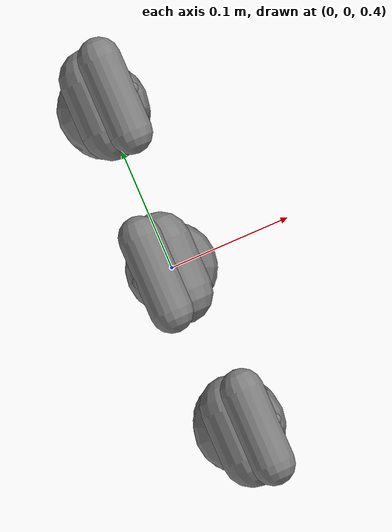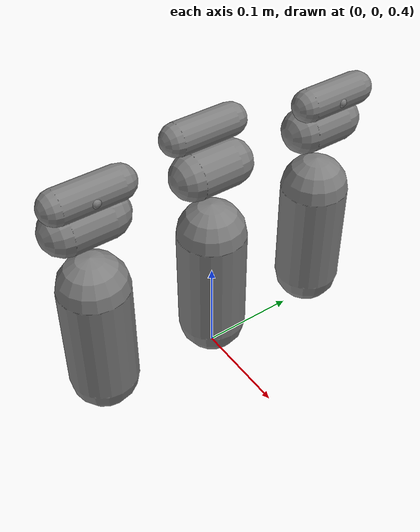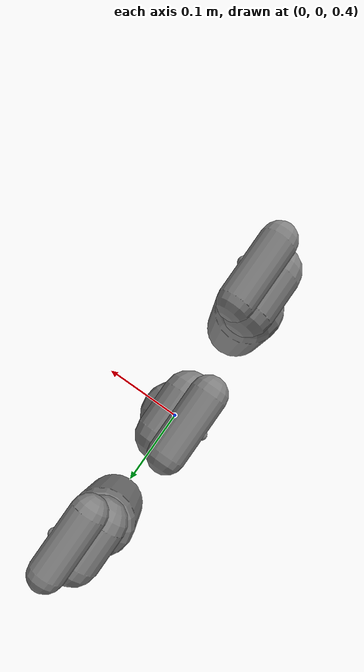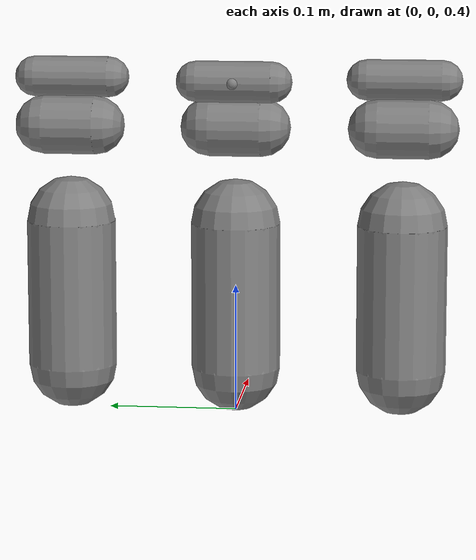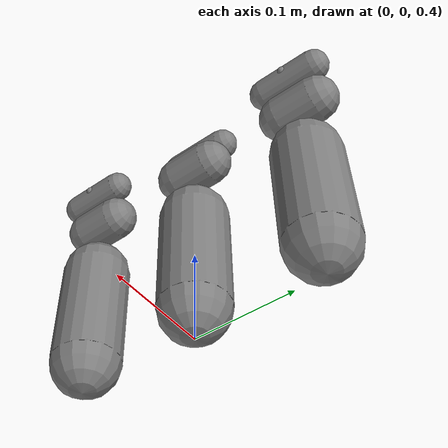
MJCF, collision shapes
<?xml version="1.0" ?>
<mujoco model="head_camera_triple">
  <compiler angle="radian" meshdir="meshes" autolimits="true"/>
  <default>
    <default class="head_camera_triple">
      <default class="visual">
        <geom group="2" type="mesh" contype="0" conaffinity="0" material="silver"/>
      </default>
      <default class="collision">
        <geom group="3" contype="1" conaffinity="1"/>
      </default>
    </default>
  </default>
  <asset>
    <material name="silver" rgba="0.75 0.75 0.75 1"/>
    <material name="blue" rgba="0 0 0.8 1"/>
    <material name="black" rgba="0 0 0 1"/>
    <material name="purple" rgba="0.8 0 0.8 1"/>
    <material name="white" rgba="1 1 1 1"/>
    <material name="light_grey" rgba="0.19 0.2 0.22 1" specular="0.75" shininess="0.05"/>
    <material name="dark_grey" rgba="0.11 0.115 0.125 1" specular="0.35" shininess="0.05"/>
    <material name="d436" rgba="0.58 0.6 0.62 1" specular="0.75" shininess="0.2"/>
    <mesh name="base_left" file="links/base_left.obj" scale="0.001 0.001 0.001"/>
    <mesh name="yaw_left" file="links/yaw_left.obj" scale="0.001 0.001 0.001"/>
    <mesh name="pitch_left_bracket" file="links/pitch_left_bracket.obj" scale="0.001 0.001 0.001"/>
    <mesh name="pitch_left_d436" file="links/pitch_left_d436.obj" scale="0.001 0.001 0.001"/>
  </asset>
  <worldbody>
    <body name="base" childclass="head_camera_triple">
      <inertial mass="1e-09" pos="0 0 0" diaginertia="1.66667e-16 1.66667e-16 1.66667e-16" quat="1 0 0 0"/>
      <body name="base_left" pos="0 0.13 0.52" quat="4.32978e-17 0.707107 -0.707107 -4.32978e-17">
        <inertial mass="0.24605608981500002" pos="0.00121642 -4.60884e-06 0.0172367" diaginertia="7.303e-05 0.0002647 0.000268578" quat="0.670606 -0.00147388 0.74181 0.0016974"/>
        <geom name="base_left_visual" type="mesh" mesh="base_left" pos="0.065 0 0.52" quat="4.32978e-17 0.707107 0.707107 4.32978e-17" class="visual" material="dark_grey"/>
        <geom name="base_left_collision" type="capsule" size="0.035 0.05750000000000002" pos="0 0 0.0275" quat="3.7494e-33 6.12323e-17 1 6.12323e-17" class="collision" contype="1" conaffinity="1" group="3"/>
        <body name="yaw_left_link" pos="0 0 0">
          <inertial mass="0.233076471852" pos="0.00139063 -1.58592e-06 -0.0992899" diaginertia="6.39461e-05 0.00012451 0.000136" quat="-0.4968 0.496906 0.503551 0.502704"/>
          <joint name="yaw_left" type="hinge" pos="0 0 0" axis="0 0 1" range="-4.7124 4.7124" damping="0.5"/>
          <geom name="yaw_left_link_visual" type="mesh" mesh="yaw_left" pos="0.065 0 0.52" quat="4.32978e-17 0.707107 0.707107 4.32978e-17" class="visual" material="dark_grey"/>
          <geom name="yaw_left_link_collision" type="capsule" size="0.023 0.020000000000000004" pos="0 0 -0.1054" quat="0.707107 -0 0.707107 0" class="collision" contype="1" conaffinity="1" group="3"/>
          <body name="pitch_left_link" pos="0 0 -0.105442" quat="0.707107 0 -0.707107 0">
            <inertial mass="0.10000002469800001" pos="-0.030783 -0.00783549 -0.00254843" diaginertia="2.97218e-05 7.28348e-05 8.77204e-05" quat="0.385609 0.569367 -0.444549 0.574023"/>
            <joint name="pitch_left" type="hinge" pos="0 0 0" axis="0 0 1" range="-1.5708 1.5708" damping="0.5"/>
            <geom name="pitch_left_link_visual0" type="mesh" mesh="pitch_left_bracket" pos="0.625442 0 -0.065" quat="0.5 -0.5 -0.5 0.5" class="visual" material="dark_grey"/>
            <geom name="pitch_left_link_visual1" type="mesh" mesh="pitch_left_d436" pos="0.625442 0 -0.065" quat="0.5 -0.5 -0.5 0.5" class="visual" material="d436"/>
            <geom name="pitch_left_link_collision" type="capsule" size="0.016 0.029" pos="-0.036558 -0.012 0" quat="3.7494e-33 6.12323e-17 1 6.12323e-17" class="collision" contype="1" conaffinity="1" group="3"/>
            <site name="left_cam_front_center" pos="-0.036558 -0.025 0" quat="0.5 0.5 0.5 -0.5"/>
            <site name="left_rgb" pos="-0.0364349 -0.0206549 0.0322991" quat="0.5 0.5 0.5 -0.5"/>
          </body>
        </body>
      </body>
      <body name="base_center" pos="0 0 0.52" quat="4.32978e-17 0.707107 0.707107 4.32978e-17">
        <inertial mass="0.24605608981500002" pos="0.00121642 -4.60884e-06 0.0172367" diaginertia="7.303e-05 0.0002647 0.000268578" quat="0.670606 -0.00147388 0.74181 0.0016974"/>
        <geom name="base_center_visual" type="mesh" mesh="base_left" pos="0.065 0 0.52" quat="4.32978e-17 0.707107 0.707107 4.32978e-17" class="visual" material="dark_grey"/>
        <geom name="base_center_collision" type="capsule" size="0.035 0.05750000000000002" pos="0 0 0.0275" quat="3.7494e-33 6.12323e-17 1 6.12323e-17" class="collision" contype="1" conaffinity="1" group="3"/>
        <body name="yaw_center_link" pos="0 0 0">
          <inertial mass="0.233076471852" pos="0.00139063 -1.58592e-06 -0.0992899" diaginertia="6.39461e-05 0.00012451 0.000136" quat="-0.4968 0.496906 0.503551 0.502704"/>
          <joint name="yaw_center" type="hinge" pos="0 0 0" axis="0 0 1" range="-4.7124 4.7124" damping="0.5"/>
          <geom name="yaw_center_link_visual" type="mesh" mesh="yaw_left" pos="0.065 0 0.52" quat="4.32978e-17 0.707107 0.707107 4.32978e-17" class="visual" material="dark_grey"/>
          <geom name="yaw_center_link_collision" type="capsule" size="0.023 0.020000000000000004" pos="0 0 -0.1054" quat="0.707107 -0 0.707107 0" class="collision" contype="1" conaffinity="1" group="3"/>
          <body name="pitch_center_link" pos="0 0 -0.105442" quat="0.707107 0 -0.707107 0">
            <inertial mass="0.10000002469800001" pos="-0.030783 -0.00783549 -0.00254843" diaginertia="2.97218e-05 7.28348e-05 8.77204e-05" quat="0.385609 0.569367 -0.444549 0.574023"/>
            <joint name="pitch_center" type="hinge" pos="0 0 0" axis="0 0 1" range="-1.5708 1.5708" damping="0.5"/>
            <geom name="pitch_center_link_visual0" type="mesh" mesh="pitch_left_bracket" pos="0.625442 0 -0.065" quat="0.5 -0.5 -0.5 0.5" class="visual" material="dark_grey"/>
            <geom name="pitch_center_link_visual1" type="mesh" mesh="pitch_left_d436" pos="0.625442 0 -0.065" quat="0.5 -0.5 -0.5 0.5" class="visual" material="d436"/>
            <geom name="pitch_center_link_collision" type="capsule" size="0.016 0.029" pos="-0.036558 -0.012 0" quat="3.7494e-33 6.12323e-17 1 6.12323e-17" class="collision" contype="1" conaffinity="1" group="3"/>
            <site name="center_cam_front_center" pos="-0.036558 -0.025 0" quat="0.5 0.5 0.5 -0.5"/>
            <site name="center_rgb" pos="-0.0364349 -0.0206549 0.0322991" quat="0.5 0.5 0.5 -0.5"/>
          </body>
        </body>
      </body>
      <body name="base_right" pos="0 -0.13 0.52" quat="4.32978e-17 0.707107 -0.707107 -4.32978e-17">
        <inertial mass="0.24605608981500002" pos="0.00121642 -4.60884e-06 0.0172367" diaginertia="7.303e-05 0.0002647 0.000268578" quat="0.670606 -0.00147388 0.74181 0.0016974"/>
        <geom name="base_right_visual" type="mesh" mesh="base_left" pos="0.065 0 0.52" quat="4.32978e-17 0.707107 0.707107 4.32978e-17" class="visual" material="dark_grey"/>
        <geom name="base_right_collision" type="capsule" size="0.035 0.05750000000000002" pos="0 0 0.0275" quat="3.7494e-33 6.12323e-17 1 6.12323e-17" class="collision" contype="1" conaffinity="1" group="3"/>
        <body name="yaw_right_link" pos="0 0 0">
          <inertial mass="0.233076471852" pos="0.00139063 -1.58592e-06 -0.0992899" diaginertia="6.39461e-05 0.00012451 0.000136" quat="-0.4968 0.496906 0.503551 0.502704"/>
          <joint name="yaw_right" type="hinge" pos="0 0 0" axis="0 0 1" range="-4.7124 4.7124" damping="0.5"/>
          <geom name="yaw_right_link_visual" type="mesh" mesh="yaw_left" pos="0.065 0 0.52" quat="4.32978e-17 0.707107 0.707107 4.32978e-17" class="visual" material="dark_grey"/>
          <geom name="yaw_right_link_collision" type="capsule" size="0.023 0.020000000000000004" pos="0 0 -0.1054" quat="0.707107 -0 0.707107 0" class="collision" contype="1" conaffinity="1" group="3"/>
          <body name="pitch_right_link" pos="0 0 -0.105442" quat="0.707107 0 -0.707107 0">
            <inertial mass="0.10000002469800001" pos="-0.030783 -0.00783549 -0.00254843" diaginertia="2.97218e-05 7.28348e-05 8.77204e-05" quat="0.385609 0.569367 -0.444549 0.574023"/>
            <joint name="pitch_right" type="hinge" pos="0 0 0" axis="0 0 1" range="-1.5708 1.5708" damping="0.5"/>
            <geom name="pitch_right_link_visual0" type="mesh" mesh="pitch_left_bracket" pos="0.625442 0 -0.065" quat="0.5 -0.5 -0.5 0.5" class="visual" material="dark_grey"/>
            <geom name="pitch_right_link_visual1" type="mesh" mesh="pitch_left_d436" pos="0.625442 0 -0.065" quat="0.5 -0.5 -0.5 0.5" class="visual" material="d436"/>
            <geom name="pitch_right_link_collision" type="capsule" size="0.016 0.029" pos="-0.036558 -0.012 0" quat="3.7494e-33 6.12323e-17 1 6.12323e-17" class="collision" contype="1" conaffinity="1" group="3"/>
            <site name="right_cam_front_center" pos="-0.036558 -0.025 0" quat="0.5 0.5 0.5 -0.5"/>
            <site name="right_rgb" pos="-0.0364349 -0.0206549 0.0322991" quat="0.5 0.5 0.5 -0.5"/>
          </body>
        </body>
      </body>
    </body>
  </worldbody>
</mujoco>
